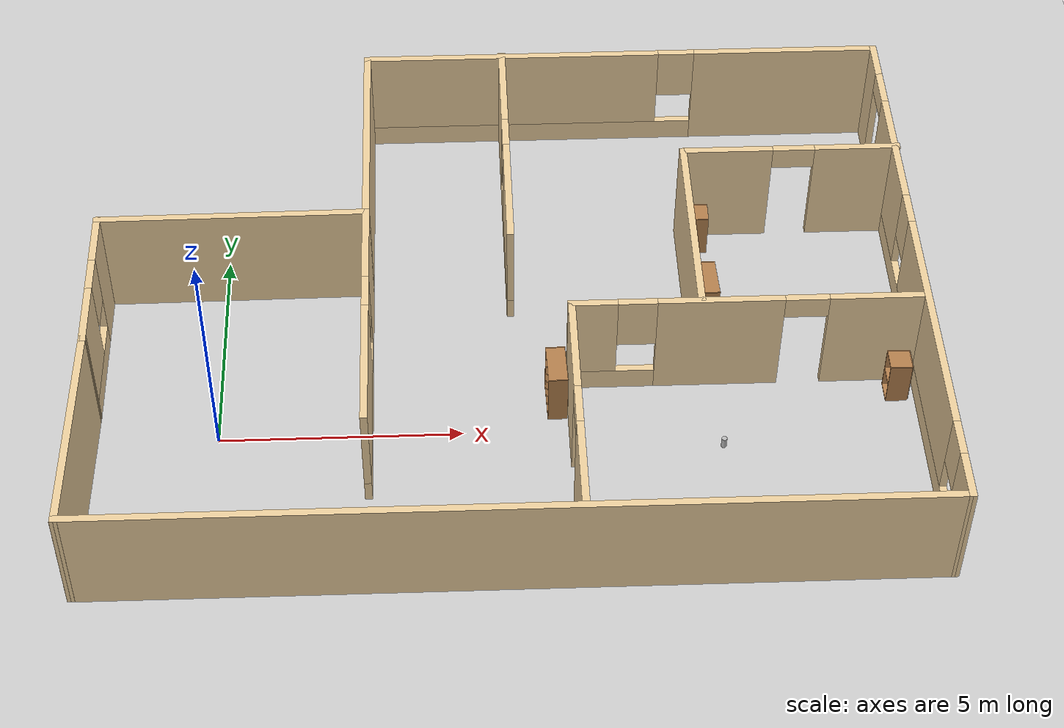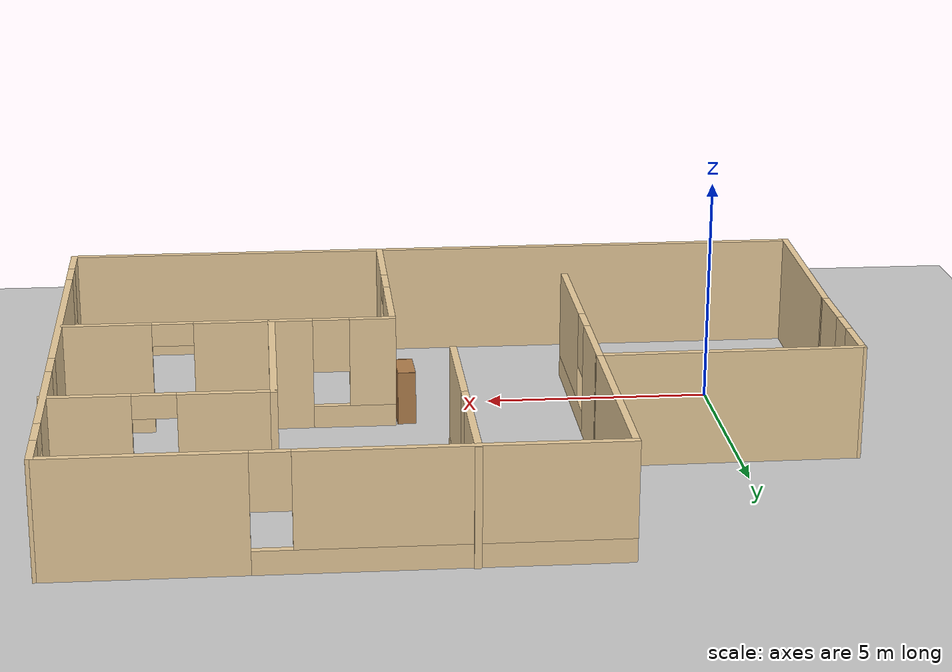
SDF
<sdf version="1.7">
 <world name="default">
  <light name="sun" type="directional">
   <pose>0 0 10 0 -0 0</pose>
   <diffuse>0.8 0.8 0.8 1</diffuse>
   <specular>0.2 0.2 0.2 1</specular>
   <attenuation>
    <range>1000</range>
    <constant>0.9</constant>
    <linear>0.01</linear>
    <quadratic>0.001</quadratic>
   </attenuation>
   <direction>-0.5 0.1 -0.9</direction>
   <spot><inner_angle>0</inner_angle><outer_angle>0</outer_angle><falloff>0</falloff></spot>
  </light>
  <model name="ground_plane">
   <static>1</static>
   <link name="link">
    <collision name="collision">
     <geometry><plane><normal>0 0 1</normal><size>100 100</size></plane></geometry>
     <surface><friction><ode><mu>100</mu><mu2>50</mu2></ode></friction></surface>
    </collision>
    <visual name="visual">
     <cast_shadows>0</cast_shadows>
     <geometry><plane><normal>0 0 1</normal><size>100 100</size></plane></geometry>
     <material>
      <script><uri>file://media/materials/scripts/gazebo.material</uri><name>Gazebo/Grey</name></script>
     </material>
    </visual>
   </link>
  </model>
  <gravity>0 0 -9.8</gravity>
  <magnetic_field>6e-06 2.3e-05 -4.2e-05</magnetic_field>
  <atmosphere type="adiabatic"/>
  <physics type="ode">
   <max_step_size>0.001</max_step_size>
   <real_time_factor>1</real_time_factor>
   <real_time_update_rate>1000</real_time_update_rate>
  </physics>
  <scene><ambient>0.4 0.4 0.4 1</ambient><background>0.7 0.7 0.7 1</background><shadows>1</shadows></scene>
  <audio><device>default</device></audio>
  <spherical_coordinates>
   <surface_model>EARTH_WGS84</surface_model>
   <latitude_deg>0</latitude_deg>
   <longitude_deg>0</longitude_deg>
   <elevation>0</elevation>
   <heading_deg>0</heading_deg>
  </spherical_coordinates>
  <model name="new_home">
   <pose>5.92046 2.52349 0 0 -0 0</pose>
   <link name="Wall_13">
    <pose>8.52827 -0.018531 0 0 -0 1.57397</pose>
    <visual name="Wall_13_Visual_0">
     <pose>-5.93688 0 1.25 0 -0 0</pose>
     <geometry><box><size>1.0454 0.15 2.5</size></box></geometry>
     <material>
      <script><uri>file://media/materials/scripts/gazebo.material</uri><name>Gazebo/Grey</name></script>
      <ambient>0.921569 0.807843 0.615686 1</ambient>
     </material>
     <meta><layer>0</layer></meta>
    </visual>
    <collision name="Wall_13_Collision_0">
     <geometry><box><size>1.0454 0.15 2.5</size></box></geometry>
     <pose>-5.93688 0 1.25 0 -0 0</pose>
    </collision>
    <visual name="Wall_13_Visual_1">
     <pose>5.97291 0 1.25 0 -0 0</pose>
     <geometry><box><size>0.973326 0.15 2.5</size></box></geometry>
     <material>
      <script><uri>file://media/materials/scripts/gazebo.material</uri><name>Gazebo/Grey</name></script>
      <ambient>0.921569 0.807843 0.615686 1</ambient>
     </material>
     <meta><layer>0</layer></meta>
    </visual>
    <collision name="Wall_13_Collision_1">
     <geometry><box><size>0.973326 0.15 2.5</size></box></geometry>
     <pose>5.97291 0 1.25 0 -0 0</pose>
    </collision>
    <visual name="Wall_13_Visual_2">
     <pose>-0.413965 0 0.25 0 -0 0</pose>
     <geometry><box><size>10.0004 0.15 0.5</size></box></geometry>
     <material>
      <script><uri>file://media/materials/scripts/gazebo.material</uri><name>Gazebo/Grey</name></script>
      <ambient>0.921569 0.807843 0.615686 1</ambient>
     </material>
     <meta><layer>0</layer></meta>
    </visual>
    <collision name="Wall_13_Collision_2">
     <geometry><box><size>10.0004 0.15 0.5</size></box></geometry>
     <pose>-0.413965 0 0.25 0 -0 0</pose>
    </collision>
    <visual name="Wall_13_Visual_3">
     <pose>-1.88842 0 1.5 0 -0 0</pose>
     <geometry><box><size>5.45152 0.15 2</size></box></geometry>
     <material>
      <script><uri>file://media/materials/scripts/gazebo.material</uri><name>Gazebo/Grey</name></script>
      <ambient>0.921569 0.807843 0.615686 1</ambient>
     </material>
     <meta><layer>0</layer></meta>
    </visual>
    <collision name="Wall_13_Collision_3">
     <geometry><box><size>5.45152 0.15 2</size></box></geometry>
     <pose>-1.88842 0 1.5 0 -0 0</pose>
    </collision>
    <visual name="Wall_13_Visual_4">
     <pose>3.1118 0 1.5 0 -0 0</pose>
     <geometry><box><size>2.94891 0.15 2</size></box></geometry>
     <material>
      <script><uri>file://media/materials/scripts/gazebo.material</uri><name>Gazebo/Grey</name></script>
      <ambient>0.921569 0.807843 0.615686 1</ambient>
     </material>
     <meta><layer>0</layer></meta>
    </visual>
    <collision name="Wall_13_Collision_4">
     <geometry><box><size>2.94891 0.15 2</size></box></geometry>
     <pose>3.1118 0 1.5 0 -0 0</pose>
    </collision>
    <visual name="Wall_13_Visual_5">
     <pose>-5.01418 0 1.9 0 -0 0</pose>
     <geometry><box><size>0.8 0.15 1.2</size></box></geometry>
     <material>
      <script><uri>file://media/materials/scripts/gazebo.material</uri><name>Gazebo/Grey</name></script>
      <ambient>0.921569 0.807843 0.615686 1</ambient>
     </material>
     <meta><layer>0</layer></meta>
    </visual>
    <collision name="Wall_13_Collision_5">
     <geometry><box><size>0.8 0.15 1.2</size></box></geometry>
     <pose>-5.01418 0 1.9 0 -0 0</pose>
    </collision>
    <visual name="Wall_13_Visual_6">
     <pose>1.23734 0 1.9 0 -0 0</pose>
     <geometry><box><size>0.8 0.15 1.2</size></box></geometry>
     <material>
      <script><uri>file://media/materials/scripts/gazebo.material</uri><name>Gazebo/Grey</name></script>
      <ambient>0.921569 0.807843 0.615686 1</ambient>
     </material>
     <meta><layer>0</layer></meta>
    </visual>
    <collision name="Wall_13_Collision_6">
     <geometry><box><size>0.8 0.15 1.2</size></box></geometry>
     <pose>1.23734 0 1.9 0 -0 0</pose>
    </collision>
    <visual name="Wall_13_Visual_7">
     <pose>5.03625 0 2.25 0 -0 0</pose>
     <geometry><box><size>0.9 0.15 0.5</size></box></geometry>
     <material>
      <script><uri>file://media/materials/scripts/gazebo.material</uri><name>Gazebo/Grey</name></script>
      <ambient>0.921569 0.807843 0.615686 1</ambient>
     </material>
     <meta><layer>0</layer></meta>
    </visual>
    <collision name="Wall_13_Collision_7">
     <geometry><box><size>0.9 0.15 0.5</size></box></geometry>
     <pose>5.03625 0 2.25 0 -0 0</pose>
    </collision>
   </link>
   <link name="Wall_15">
    <pose>2.83304 6.36601 0 0 -0 3.14159</pose>
    <visual name="Wall_15_Visual_0">
     <pose>-3.69333 0 1.25 0 -0 0</pose>
     <geometry><box><size>4.11333 0.15 2.5</size></box></geometry>
     <material>
      <script><uri>file://media/materials/scripts/gazebo.material</uri><name>Gazebo/Grey</name></script>
      <ambient>0.921569 0.807843 0.615686 1</ambient>
     </material>
     <meta><layer>0</layer></meta>
    </visual>
    <collision name="Wall_15_Collision_0">
     <geometry><box><size>4.11333 0.15 2.5</size></box></geometry>
     <pose>-3.69333 0 1.25 0 -0 0</pose>
    </collision>
    <visual name="Wall_15_Visual_1">
     <pose>2.05667 0 0.25 0 -0 0</pose>
     <geometry><box><size>7.38667 0.15 0.5</size></box></geometry>
     <material>
      <script><uri>file://media/materials/scripts/gazebo.material</uri><name>Gazebo/Grey</name></script>
      <ambient>0.921569 0.807843 0.615686 1</ambient>
     </material>
     <meta><layer>0</layer></meta>
    </visual>
    <collision name="Wall_15_Collision_1">
     <geometry><box><size>7.38667 0.15 0.5</size></box></geometry>
     <pose>2.05667 0 0.25 0 -0 0</pose>
    </collision>
    <visual name="Wall_15_Visual_2">
     <pose>2.45667 0 1.5 0 -0 0</pose>
     <geometry><box><size>6.58667 0.15 2</size></box></geometry>
     <material>
      <script><uri>file://media/materials/scripts/gazebo.material</uri><name>Gazebo/Grey</name></script>
      <ambient>0.921569 0.807843 0.615686 1</ambient>
     </material>
     <meta><layer>0</layer></meta>
    </visual>
    <collision name="Wall_15_Collision_2">
     <geometry><box><size>6.58667 0.15 2</size></box></geometry>
     <pose>2.45667 0 1.5 0 -0 0</pose>
    </collision>
    <visual name="Wall_15_Visual_3">
     <pose>-1.23667 0 1.9 0 -0 0</pose>
     <geometry><box><size>0.8 0.15 1.2</size></box></geometry>
     <material>
      <script><uri>file://media/materials/scripts/gazebo.material</uri><name>Gazebo/Grey</name></script>
      <ambient>0.921569 0.807843 0.615686 1</ambient>
     </material>
     <meta><layer>0</layer></meta>
    </visual>
    <collision name="Wall_15_Collision_3">
     <geometry><box><size>0.8 0.15 1.2</size></box></geometry>
     <pose>-1.23667 0 1.9 0 -0 0</pose>
    </collision>
   </link>
   <link name="Wall_16">
    <collision name="Wall_16_Collision">
     <geometry><box><size>5 0.15 2.5</size></box></geometry>
     <pose>0 0 1.25 0 -0 0</pose>
    </collision>
    <visual name="Wall_16_Visual">
     <pose>0 0 1.25 0 -0 0</pose>
     <geometry><box><size>5 0.15 2.5</size></box></geometry>
     <material>
      <script><uri>file://media/materials/scripts/gazebo.material</uri><name>Gazebo/Grey</name></script>
      <ambient>0.921569 0.807843 0.615686 1</ambient>
     </material>
     <meta><layer>0</layer></meta>
    </visual>
    <pose>-2.84196 3.94101 0 0 -0 -1.5708</pose>
   </link>
   <link name="Wall_17">
    <collision name="Wall_17_Collision">
     <geometry><box><size>5.75022 0.15 2.5</size></box></geometry>
     <pose>0 0 1.25 0 -0 0</pose>
    </collision>
    <visual name="Wall_17_Visual">
     <pose>0 0 1.25 0 -0 0</pose>
     <geometry><box><size>5.75022 0.15 2.5</size></box></geometry>
     <material>
      <script><uri>file://media/materials/scripts/gazebo.material</uri><name>Gazebo/Grey</name></script>
      <ambient>0.921569 0.807843 0.615686 1</ambient>
     </material>
     <meta><layer>0</layer></meta>
    </visual>
    <pose>-5.64196 1.49101 0 0 -0 -3.13266</pose>
   </link>
   <link name="Wall_19">
    <pose>-2.84196 -1.28399 0 0 -0 -1.5708</pose>
    <visual name="Wall_19_Visual_0">
     <pose>-1.8912 0 1.25 0 -0 0</pose>
     <geometry><box><size>1.9676 0.15 2.5</size></box></geometry>
     <material>
      <script><uri>file://media/materials/scripts/gazebo.material</uri><name>Gazebo/Grey</name></script>
      <ambient>0.921569 0.807843 0.615686 1</ambient>
     </material>
     <meta><layer>0</layer></meta>
    </visual>
    <collision name="Wall_19_Collision_0">
     <geometry><box><size>1.9676 0.15 2.5</size></box></geometry>
     <pose>-1.8912 0 1.25 0 -0 0</pose>
    </collision>
    <visual name="Wall_19_Visual_1">
     <pose>0.983801 0 0.25 0 -0 0</pose>
     <geometry><box><size>3.7824 0.15 0.5</size></box></geometry>
     <material>
      <script><uri>file://media/materials/scripts/gazebo.material</uri><name>Gazebo/Grey</name></script>
      <ambient>0.921569 0.807843 0.615686 1</ambient>
     </material>
     <meta><layer>0</layer></meta>
    </visual>
    <collision name="Wall_19_Collision_1">
     <geometry><box><size>3.7824 0.15 0.5</size></box></geometry>
     <pose>0.983801 0 0.25 0 -0 0</pose>
    </collision>
    <visual name="Wall_19_Visual_2">
     <pose>1.3838 0 1.5 0 -0 0</pose>
     <geometry><box><size>2.9824 0.15 2</size></box></geometry>
     <material>
      <script><uri>file://media/materials/scripts/gazebo.material</uri><name>Gazebo/Grey</name></script>
      <ambient>0.921569 0.807843 0.615686 1</ambient>
     </material>
     <meta><layer>0</layer></meta>
    </visual>
    <collision name="Wall_19_Collision_2">
     <geometry><box><size>2.9824 0.15 2</size></box></geometry>
     <pose>1.3838 0 1.5 0 -0 0</pose>
    </collision>
    <visual name="Wall_19_Visual_3">
     <pose>-0.507399 0 1.9 0 -0 0</pose>
     <geometry><box><size>0.8 0.15 1.2</size></box></geometry>
     <material>
      <script><uri>file://media/materials/scripts/gazebo.material</uri><name>Gazebo/Grey</name></script>
      <ambient>0.921569 0.807843 0.615686 1</ambient>
     </material>
     <meta><layer>0</layer></meta>
    </visual>
    <collision name="Wall_19_Collision_3">
     <geometry><box><size>0.8 0.15 1.2</size></box></geometry>
     <pose>-0.507399 0 1.9 0 -0 0</pose>
    </collision>
   </link>
   <link name="Wall_21">
    <pose>4.86947 -1.27328 0 0 -0 3.14159</pose>
    <visual name="Wall_21_Visual_0">
     <pose>-2.64843 0 1.25 0 -0 0</pose>
     <geometry><box><size>1.95315 0.15 2.5</size></box></geometry>
     <material>
      <script><uri>file://media/materials/scripts/gazebo.material</uri><name>Gazebo/Grey</name></script>
      <ambient>0.921569 0.807843 0.615686 1</ambient>
     </material>
     <meta><layer>0</layer></meta>
    </visual>
    <collision name="Wall_21_Collision_0">
     <geometry><box><size>1.95315 0.15 2.5</size></box></geometry>
     <pose>-2.64843 0 1.25 0 -0 0</pose>
    </collision>
    <visual name="Wall_21_Visual_1">
     <pose>0.518863 0 1.25 0 -0 0</pose>
     <geometry><box><size>2.58143 0.15 2.5</size></box></geometry>
     <material>
      <script><uri>file://media/materials/scripts/gazebo.material</uri><name>Gazebo/Grey</name></script>
      <ambient>0.921569 0.807843 0.615686 1</ambient>
     </material>
     <meta><layer>0</layer></meta>
    </visual>
    <collision name="Wall_21_Collision_1">
     <geometry><box><size>2.58143 0.15 2.5</size></box></geometry>
     <pose>0.518863 0 1.25 0 -0 0</pose>
    </collision>
    <visual name="Wall_21_Visual_2">
     <pose>2.71729 0 0.25 0 -0 0</pose>
     <geometry><box><size>1.81542 0.15 0.5</size></box></geometry>
     <material>
      <script><uri>file://media/materials/scripts/gazebo.material</uri><name>Gazebo/Grey</name></script>
      <ambient>0.921569 0.807843 0.615686 1</ambient>
     </material>
     <meta><layer>0</layer></meta>
    </visual>
    <collision name="Wall_21_Collision_2">
     <geometry><box><size>1.81542 0.15 0.5</size></box></geometry>
     <pose>2.71729 0 0.25 0 -0 0</pose>
    </collision>
    <visual name="Wall_21_Visual_3">
     <pose>3.11729 0 1.5 0 -0 0</pose>
     <geometry><box><size>1.01542 0.15 2</size></box></geometry>
     <material>
      <script><uri>file://media/materials/scripts/gazebo.material</uri><name>Gazebo/Grey</name></script>
      <ambient>0.921569 0.807843 0.615686 1</ambient>
     </material>
     <meta><layer>0</layer></meta>
    </visual>
    <collision name="Wall_21_Collision_3">
     <geometry><box><size>1.01542 0.15 2</size></box></geometry>
     <pose>3.11729 0 1.5 0 -0 0</pose>
    </collision>
    <visual name="Wall_21_Visual_4">
     <pose>2.20958 0 1.9 0 -0 0</pose>
     <geometry><box><size>0.8 0.15 1.2</size></box></geometry>
     <material>
      <script><uri>file://media/materials/scripts/gazebo.material</uri><name>Gazebo/Grey</name></script>
      <ambient>0.921569 0.807843 0.615686 1</ambient>
     </material>
     <meta><layer>0</layer></meta>
    </visual>
    <collision name="Wall_21_Collision_4">
     <geometry><box><size>0.8 0.15 1.2</size></box></geometry>
     <pose>2.20958 0 1.9 0 -0 0</pose>
    </collision>
    <visual name="Wall_21_Visual_5">
     <pose>-1.22185 0 2.25 0 -0 0</pose>
     <geometry><box><size>0.9 0.15 0.5</size></box></geometry>
     <material>
      <script><uri>file://media/materials/scripts/gazebo.material</uri><name>Gazebo/Grey</name></script>
      <ambient>0.921569 0.807843 0.615686 1</ambient>
     </material>
     <meta><layer>0</layer></meta>
    </visual>
    <collision name="Wall_21_Collision_5">
     <geometry><box><size>0.9 0.15 0.5</size></box></geometry>
     <pose>-1.22185 0 2.25 0 -0 0</pose>
    </collision>
   </link>
   <link name="Wall_22">
    <pose>1.31947 -3.82328 0 0 -0 -1.5708</pose>
    <visual name="Wall_22_Visual_0">
     <pose>-1.48791 0 1.25 0 -0 0</pose>
     <geometry><box><size>2.27418 0.15 2.5</size></box></geometry>
     <material>
      <script><uri>file://media/materials/scripts/gazebo.material</uri><name>Gazebo/Grey</name></script>
      <ambient>0.921569 0.807843 0.615686 1</ambient>
     </material>
     <meta><layer>0</layer></meta>
    </visual>
    <collision name="Wall_22_Collision_0">
     <geometry><box><size>2.27418 0.15 2.5</size></box></geometry>
     <pose>-1.48791 0 1.25 0 -0 0</pose>
    </collision>
    <visual name="Wall_22_Visual_1">
     <pose>1.58709 0 1.25 0 -0 0</pose>
     <geometry><box><size>2.07582 0.15 2.5</size></box></geometry>
     <material>
      <script><uri>file://media/materials/scripts/gazebo.material</uri><name>Gazebo/Grey</name></script>
      <ambient>0.921569 0.807843 0.615686 1</ambient>
     </material>
     <meta><layer>0</layer></meta>
    </visual>
    <collision name="Wall_22_Collision_1">
     <geometry><box><size>2.07582 0.15 2.5</size></box></geometry>
     <pose>1.58709 0 1.25 0 -0 0</pose>
    </collision>
    <visual name="Wall_22_Visual_2">
     <pose>0.099177 0 2.25 0 -0 0</pose>
     <geometry><box><size>0.9 0.15 0.5</size></box></geometry>
     <material>
      <script><uri>file://media/materials/scripts/gazebo.material</uri><name>Gazebo/Grey</name></script>
      <ambient>0.921569 0.807843 0.615686 1</ambient>
     </material>
     <meta><layer>0</layer></meta>
    </visual>
    <collision name="Wall_22_Collision_2">
     <geometry><box><size>0.9 0.15 0.5</size></box></geometry>
     <pose>0.099177 0 2.25 0 -0 0</pose>
    </collision>
   </link>
   <link name="Wall_24">
    <pose>0.16011 3.60487 0 0 -0 -1.5708</pose>
    <visual name="Wall_24_Visual_0">
     <pose>-1.77429 0 1.25 0 -0 0</pose>
     <geometry><box><size>2.20142 0.15 2.5</size></box></geometry>
     <material>
      <script><uri>file://media/materials/scripts/gazebo.material</uri><name>Gazebo/Grey</name></script>
      <ambient>0.921569 0.807843 0.615686 1</ambient>
     </material>
     <meta><layer>0</layer></meta>
    </visual>
    <collision name="Wall_24_Collision_0">
     <geometry><box><size>2.20142 0.15 2.5</size></box></geometry>
     <pose>-1.77429 0 1.25 0 -0 0</pose>
    </collision>
    <visual name="Wall_24_Visual_1">
     <pose>1.10071 0 0.25 0 -0 0</pose>
     <geometry><box><size>3.54858 0.15 0.5</size></box></geometry>
     <material>
      <script><uri>file://media/materials/scripts/gazebo.material</uri><name>Gazebo/Grey</name></script>
      <ambient>0.921569 0.807843 0.615686 1</ambient>
     </material>
     <meta><layer>0</layer></meta>
    </visual>
    <collision name="Wall_24_Collision_1">
     <geometry><box><size>3.54858 0.15 0.5</size></box></geometry>
     <pose>1.10071 0 0.25 0 -0 0</pose>
    </collision>
    <visual name="Wall_24_Visual_2">
     <pose>1.50071 0 1.5 0 -0 0</pose>
     <geometry><box><size>2.74858 0.15 2</size></box></geometry>
     <material>
      <script><uri>file://media/materials/scripts/gazebo.material</uri><name>Gazebo/Grey</name></script>
      <ambient>0.921569 0.807843 0.615686 1</ambient>
     </material>
     <meta><layer>0</layer></meta>
    </visual>
    <collision name="Wall_24_Collision_2">
     <geometry><box><size>2.74858 0.15 2</size></box></geometry>
     <pose>1.50071 0 1.5 0 -0 0</pose>
    </collision>
    <visual name="Wall_24_Visual_3">
     <pose>-0.273577 0 1.9 0 -0 0</pose>
     <geometry><box><size>0.8 0.15 1.2</size></box></geometry>
     <material>
      <script><uri>file://media/materials/scripts/gazebo.material</uri><name>Gazebo/Grey</name></script>
      <ambient>0.921569 0.807843 0.615686 1</ambient>
     </material>
     <meta><layer>0</layer></meta>
    </visual>
    <collision name="Wall_24_Collision_3">
     <geometry><box><size>0.8 0.15 1.2</size></box></geometry>
     <pose>-0.273577 0 1.9 0 -0 0</pose>
    </collision>
   </link>
   <link name="Wall_26">
    <collision name="Wall_26_Collision">
     <geometry><box><size>4.5 0.15 2.5</size></box></geometry>
     <pose>0 0 1.25 0 -0 0</pose>
    </collision>
    <visual name="Wall_26_Visual">
     <pose>0 0 1.25 0 -0 0</pose>
     <geometry><box><size>4.5 0.15 2.5</size></box></geometry>
     <material>
      <script><uri>file://media/materials/scripts/gazebo.material</uri><name>Gazebo/Grey</name></script>
      <ambient>0.921569 0.807843 0.615686 1</ambient>
     </material>
     <meta><layer>0</layer></meta>
    </visual>
    <pose>3.9533 0.962904 0 0 -0 1.5708</pose>
   </link>
   <link name="Wall_27">
    <pose>6.2533 3.1379 0 0 -0 0</pose>
    <visual name="Wall_27_Visual_0">
     <pose>-1.37379 0 1.25 0 -0 0</pose>
     <geometry><box><size>2.00243 0.15 2.5</size></box></geometry>
     <material>
      <script><uri>file://media/materials/scripts/gazebo.material</uri><name>Gazebo/Grey</name></script>
      <ambient>0.921569 0.807843 0.615686 1</ambient>
     </material>
     <meta><layer>0</layer></meta>
    </visual>
    <collision name="Wall_27_Collision_0">
     <geometry><box><size>2.00243 0.15 2.5</size></box></geometry>
     <pose>-1.37379 0 1.25 0 -0 0</pose>
    </collision>
    <visual name="Wall_27_Visual_1">
     <pose>1.45121 0 1.25 0 -0 0</pose>
     <geometry><box><size>1.84757 0.15 2.5</size></box></geometry>
     <material>
      <script><uri>file://media/materials/scripts/gazebo.material</uri><name>Gazebo/Grey</name></script>
      <ambient>0.921569 0.807843 0.615686 1</ambient>
     </material>
     <meta><layer>0</layer></meta>
    </visual>
    <collision name="Wall_27_Collision_1">
     <geometry><box><size>1.84757 0.15 2.5</size></box></geometry>
     <pose>1.45121 0 1.25 0 -0 0</pose>
    </collision>
    <visual name="Wall_27_Visual_2">
     <pose>0.077426 0 2.25 0 -0 0</pose>
     <geometry><box><size>0.9 0.15 0.5</size></box></geometry>
     <material>
      <script><uri>file://media/materials/scripts/gazebo.material</uri><name>Gazebo/Grey</name></script>
      <ambient>0.921569 0.807843 0.615686 1</ambient>
     </material>
     <meta><layer>0</layer></meta>
    </visual>
    <collision name="Wall_27_Collision_2">
     <geometry><box><size>0.9 0.15 0.5</size></box></geometry>
     <pose>0.077426 0 2.25 0 -0 0</pose>
    </collision>
   </link>
   <link name="Wall_29">
    <collision name="Wall_29_Collision">
     <geometry><box><size>17.25 0.15 2.5</size></box></geometry>
     <pose>0 0 1.25 0 -0 0</pose>
    </collision>
    <visual name="Wall_29_Visual">
     <pose>0 0 1.25 0 -0 0</pose>
     <geometry><box><size>17.25 0.15 2.5</size></box></geometry>
     <material>
      <script><uri>file://media/materials/scripts/gazebo.material</uri><name>Gazebo/Grey</name></script>
      <ambient>0.921569 0.807843 0.615686 1</ambient>
     </material>
     <meta><layer>0</layer></meta>
    </visual>
    <pose>-0.001503 -6.40308 0 0 -0 3.14159</pose>
   </link>
   <link name="Wall_30">
    <collision name="Wall_30_Collision">
     <geometry><box><size>4.67042 0.15 2.5</size></box></geometry>
     <pose>0 0 1.25 0 -0 0</pose>
    </collision>
    <visual name="Wall_30_Visual">
     <pose>0 0 1.25 0 -0 0</pose>
     <geometry><box><size>4.67042 0.15 2.5</size></box></geometry>
     <material>
      <script><uri>file://media/materials/scripts/gazebo.material</uri><name>Gazebo/Grey</name></script>
      <ambient>0.921569 0.807843 0.615686 1</ambient>
     </material>
     <meta><layer>0</layer></meta>
    </visual>
    <pose>-8.49673 -4.14353 0 0 -0 1.54656</pose>
   </link>
   <link name="Wall_8">
    <pose>-8.44196 -0.208986 0 0 -0 -1.5708</pose>
    <visual name="Wall_8_Visual_0">
     <pose>-1.1237 0 1.25 0 -0 0</pose>
     <geometry><box><size>1.2526 0.15 2.5</size></box></geometry>
     <material>
      <script><uri>file://media/materials/scripts/gazebo.material</uri><name>Gazebo/Grey</name></script>
      <ambient>0.921569 0.807843 0.615686 1</ambient>
     </material>
     <meta><layer>0</layer></meta>
    </visual>
    <collision name="Wall_8_Collision_0">
     <geometry><box><size>1.2526 0.15 2.5</size></box></geometry>
     <pose>-1.1237 0 1.25 0 -0 0</pose>
    </collision>
    <visual name="Wall_8_Visual_1">
     <pose>0.626298 0 0.25 0 -0 0</pose>
     <geometry><box><size>2.2474 0.15 0.5</size></box></geometry>
     <material>
      <script><uri>file://media/materials/scripts/gazebo.material</uri><name>Gazebo/Grey</name></script>
      <ambient>0.921569 0.807843 0.615686 1</ambient>
     </material>
     <meta><layer>0</layer></meta>
    </visual>
    <collision name="Wall_8_Collision_1">
     <geometry><box><size>2.2474 0.15 0.5</size></box></geometry>
     <pose>0.626298 0 0.25 0 -0 0</pose>
    </collision>
    <visual name="Wall_8_Visual_2">
     <pose>1.0263 0 1.5 0 -0 0</pose>
     <geometry><box><size>1.4474 0.15 2</size></box></geometry>
     <material>
      <script><uri>file://media/materials/scripts/gazebo.material</uri><name>Gazebo/Grey</name></script>
      <ambient>0.921569 0.807843 0.615686 1</ambient>
     </material>
     <meta><layer>0</layer></meta>
    </visual>
    <collision name="Wall_8_Collision_2">
     <geometry><box><size>1.4474 0.15 2</size></box></geometry>
     <pose>1.0263 0 1.5 0 -0 0</pose>
    </collision>
    <visual name="Wall_8_Visual_3">
     <pose>-0.097404 0 1.9 0 -0 0</pose>
     <geometry><box><size>0.8 0.15 1.2</size></box></geometry>
     <material>
      <script><uri>file://media/materials/scripts/gazebo.material</uri><name>Gazebo/Grey</name></script>
      <ambient>0.921569 0.807843 0.615686 1</ambient>
     </material>
     <meta><layer>0</layer></meta>
    </visual>
    <collision name="Wall_8_Collision_3">
     <geometry><box><size>0.8 0.15 1.2</size></box></geometry>
     <pose>-0.097404 0 1.9 0 -0 0</pose>
    </collision>
   </link>
   <static>1</static>
  </model>
  <model name="cabinet">
   <static>1</static>
   <link name="cabinet_bottom_plate">
    <inertial>
     <pose>0 0 -1 0 -0 0</pose>
     <inertia><ixx>2.05</ixx><ixy>0</ixy><ixz>0</ixz><iyy>2.05</iyy><iyz>0</iyz><izz>2.05</izz></inertia>
     <mass>25</mass>
    </inertial>
    <collision name="cabinet_bottom_plate_geom">
     <pose>0 0 0.01 0 -0 0</pose>
     <geometry><box><size>0.45 0.45 0.02</size></box></geometry>
    </collision>
    <visual name="cabinet_bottom_plate_geom_visual">
     <pose>0 0 0.01 0 -0 0</pose>
     <geometry><box><size>0.45 0.45 0.02</size></box></geometry>
     <material>
      <script><uri>file://media/materials/scripts/gazebo.material</uri><name>Gazebo/Wood</name></script>
     </material>
    </visual>
    <collision name="cabinet_bottom_plate_geom_cabinet_back_plate">
     <pose>0.235 0 0.51 0 -0 0</pose>
     <geometry><box><size>0.02 0.45 1.02</size></box></geometry>
    </collision>
    <visual name="cabinet_bottom_plate_geom_cabinet_back_plate_visual">
     <pose>0.235 0 0.51 0 -0 0</pose>
     <geometry><box><size>0.02 0.45 1.02</size></box></geometry>
     <material>
      <script><uri>file://media/materials/scripts/gazebo.material</uri><name>Gazebo/Wood</name></script>
     </material>
    </visual>
    <collision name="cabinet_bottom_plate_geom_cabinet_left_plate">
     <pose>0 0.235 0.51 0 -0 0</pose>
     <geometry><box><size>0.45 0.02 1.02</size></box></geometry>
    </collision>
    <visual name="cabinet_bottom_plate_geom_cabinet_left_plate_visual">
     <pose>0 0.235 0.51 0 -0 0</pose>
     <geometry><box><size>0.45 0.02 1.02</size></box></geometry>
     <material>
      <script><uri>file://media/materials/scripts/gazebo.material</uri><name>Gazebo/Wood</name></script>
     </material>
    </visual>
    <collision name="cabinet_bottom_plate_geom_cabinet_middle_plate">
     <pose>0 0 0.51 0 -0 0</pose>
     <geometry><box><size>0.45 0.45 0.02</size></box></geometry>
    </collision>
    <visual name="cabinet_bottom_plate_geom_cabinet_middle_plate_visual">
     <pose>0 0 0.51 0 -0 0</pose>
     <geometry><box><size>0.45 0.45 0.02</size></box></geometry>
     <material>
      <script><uri>file://media/materials/scripts/gazebo.material</uri><name>Gazebo/Wood</name></script>
     </material>
    </visual>
    <collision name="cabinet_bottom_plate_geom_cabinet_right_plate">
     <pose>0 -0.235 0.51 0 -0 0</pose>
     <geometry><box><size>0.45 0.02 1.02</size></box></geometry>
    </collision>
    <visual name="cabinet_bottom_plate_geom_cabinet_right_plate_visual">
     <pose>0 -0.235 0.51 0 -0 0</pose>
     <geometry><box><size>0.45 0.02 1.02</size></box></geometry>
     <material>
      <script><uri>file://media/materials/scripts/gazebo.material</uri><name>Gazebo/Wood</name></script>
     </material>
    </visual>
    <collision name="cabinet_bottom_plate_geom_cabinet_top_plate">
     <pose>0 0 1.01 0 -0 0</pose>
     <geometry><box><size>0.45 0.45 0.02</size></box></geometry>
    </collision>
    <visual name="cabinet_bottom_plate_geom_cabinet_top_plate_visual">
     <pose>0 0 1.01 0 -0 0</pose>
     <geometry><box><size>0.45 0.45 0.02</size></box></geometry>
     <material>
      <script><uri>file://media/materials/scripts/gazebo.material</uri><name>Gazebo/Wood</name></script>
     </material>
    </visual>
   </link>
   <pose>13.9989 0.828676 0 0 -0 0</pose>
  </model>
  <model name="cabinet_0">
   <static>1</static>
   <link name="cabinet_bottom_plate">
    <inertial>
     <pose>0 0 -1 0 -0 0</pose>
     <inertia><ixx>2.05</ixx><ixy>0</ixy><ixz>0</ixz><iyy>2.05</iyy><iyz>0</iyz><izz>2.05</izz></inertia>
     <mass>25</mass>
    </inertial>
    <collision name="cabinet_bottom_plate_geom">
     <pose>0 0 0.01 0 -0 0</pose>
     <geometry><box><size>0.45 0.45 0.02</size></box></geometry>
    </collision>
    <visual name="cabinet_bottom_plate_geom_visual">
     <pose>0 0 0.01 0 -0 0</pose>
     <geometry><box><size>0.45 0.45 0.02</size></box></geometry>
     <material>
      <script><uri>file://media/materials/scripts/gazebo.material</uri><name>Gazebo/Wood</name></script>
     </material>
    </visual>
    <collision name="cabinet_bottom_plate_geom_cabinet_back_plate">
     <pose>0.235 0 0.51 0 -0 0</pose>
     <geometry><box><size>0.02 0.45 1.02</size></box></geometry>
    </collision>
    <visual name="cabinet_bottom_plate_geom_cabinet_back_plate_visual">
     <pose>0.235 0 0.51 0 -0 0</pose>
     <geometry><box><size>0.02 0.45 1.02</size></box></geometry>
     <material>
      <script><uri>file://media/materials/scripts/gazebo.material</uri><name>Gazebo/Wood</name></script>
     </material>
    </visual>
    <collision name="cabinet_bottom_plate_geom_cabinet_left_plate">
     <pose>0 0.235 0.51 0 -0 0</pose>
     <geometry><box><size>0.45 0.02 1.02</size></box></geometry>
    </collision>
    <visual name="cabinet_bottom_plate_geom_cabinet_left_plate_visual">
     <pose>0 0.235 0.51 0 -0 0</pose>
     <geometry><box><size>0.45 0.02 1.02</size></box></geometry>
     <material>
      <script><uri>file://media/materials/scripts/gazebo.material</uri><name>Gazebo/Wood</name></script>
     </material>
    </visual>
    <collision name="cabinet_bottom_plate_geom_cabinet_middle_plate">
     <pose>0 0 0.51 0 -0 0</pose>
     <geometry><box><size>0.45 0.45 0.02</size></box></geometry>
    </collision>
    <visual name="cabinet_bottom_plate_geom_cabinet_middle_plate_visual">
     <pose>0 0 0.51 0 -0 0</pose>
     <geometry><box><size>0.45 0.45 0.02</size></box></geometry>
     <material>
      <script><uri>file://media/materials/scripts/gazebo.material</uri><name>Gazebo/Wood</name></script>
     </material>
    </visual>
    <collision name="cabinet_bottom_plate_geom_cabinet_right_plate">
     <pose>0 -0.235 0.51 0 -0 0</pose>
     <geometry><box><size>0.45 0.02 1.02</size></box></geometry>
    </collision>
    <visual name="cabinet_bottom_plate_geom_cabinet_right_plate_visual">
     <pose>0 -0.235 0.51 0 -0 0</pose>
     <geometry><box><size>0.45 0.02 1.02</size></box></geometry>
     <material>
      <script><uri>file://media/materials/scripts/gazebo.material</uri><name>Gazebo/Wood</name></script>
     </material>
    </visual>
    <collision name="cabinet_bottom_plate_geom_cabinet_top_plate">
     <pose>0 0 1.01 0 -0 0</pose>
     <geometry><box><size>0.45 0.45 0.02</size></box></geometry>
    </collision>
    <visual name="cabinet_bottom_plate_geom_cabinet_top_plate_visual">
     <pose>0 0 1.01 0 -0 0</pose>
     <geometry><box><size>0.45 0.45 0.02</size></box></geometry>
     <material>
      <script><uri>file://media/materials/scripts/gazebo.material</uri><name>Gazebo/Wood</name></script>
     </material>
    </visual>
   </link>
   <pose>10.2345 5.27244 -0 0 -0 3.12524</pose>
  </model>
  <model name="bookshelf">
   <static>1</static>
   <link name="link">
    <inertial><mass>1</mass></inertial>
    <collision name="back">
     <pose>0 0.005 0.6 0 -0 0</pose>
     <geometry><box><size>0.9 0.01 1.2</size></box></geometry>
    </collision>
    <visual name="visual1">
     <pose>0 0.005 0.6 0 -0 0</pose>
     <geometry><box><size>0.9 0.01 1.2</size></box></geometry>
     <material>
      <script><uri>file://media/materials/scripts/gazebo.material</uri><name>Gazebo/Wood</name></script>
     </material>
    </visual>
    <collision name="left_side">
     <pose>0.45 -0.195 0.6 0 -0 0</pose>
     <geometry><box><size>0.02 0.4 1.2</size></box></geometry>
    </collision>
    <visual name="visual2">
     <pose>0.45 -0.195 0.6 0 -0 0</pose>
     <geometry><box><size>0.02 0.4 1.2</size></box></geometry>
     <material>
      <script><uri>file://media/materials/scripts/gazebo.material</uri><name>Gazebo/Wood</name></script>
     </material>
    </visual>
    <collision name="right_side">
     <pose>-0.45 -0.195 0.6 0 -0 0</pose>
     <geometry><box><size>0.02 0.4 1.2</size></box></geometry>
    </collision>
    <visual name="visual3">
     <pose>-0.45 -0.195 0.6 0 -0 0</pose>
     <geometry><box><size>0.02 0.4 1.2</size></box></geometry>
     <material>
      <script><uri>file://media/materials/scripts/gazebo.material</uri><name>Gazebo/Wood</name></script>
     </material>
    </visual>
    <collision name="bottom">
     <pose>0 -0.195 0.03 0 -0 0</pose>
     <geometry><box><size>0.88 0.4 0.06</size></box></geometry>
    </collision>
    <visual name="visual4">
     <pose>0 -0.195 0.03 0 -0 0</pose>
     <geometry><box><size>0.88 0.4 0.06</size></box></geometry>
     <material>
      <script><uri>file://media/materials/scripts/gazebo.material</uri><name>Gazebo/Wood</name></script>
     </material>
    </visual>
    <collision name="top">
     <pose>0 -0.195 1.19 0 -0 0</pose>
     <geometry><box><size>0.88 0.4 0.02</size></box></geometry>
    </collision>
    <visual name="visual5">
     <pose>0 -0.195 1.19 0 -0 0</pose>
     <geometry><box><size>0.88 0.4 0.02</size></box></geometry>
     <material>
      <script><uri>file://media/materials/scripts/gazebo.material</uri><name>Gazebo/Wood</name></script>
     </material>
    </visual>
    <collision name="low_shelf">
     <pose>0 -0.195 0.43 0 -0 0</pose>
     <geometry><box><size>0.88 0.4 0.02</size></box></geometry>
    </collision>
    <visual name="visual6">
     <pose>0 -0.195 0.43 0 -0 0</pose>
     <geometry><box><size>0.88 0.4 0.02</size></box></geometry>
     <material>
      <script><uri>file://media/materials/scripts/gazebo.material</uri><name>Gazebo/Wood</name></script>
     </material>
    </visual>
    <collision name="high_shelf">
     <pose>0 -0.195 0.8 0 -0 0</pose>
     <geometry><box><size>0.88 0.4 0.02</size></box></geometry>
    </collision>
    <visual name="visual7">
     <pose>0 -0.195 0.8 0 -0 0</pose>
     <geometry><box><size>0.88 0.4 0.02</size></box></geometry>
     <material>
      <script><uri>file://media/materials/scripts/gazebo.material</uri><name>Gazebo/Wood</name></script>
     </material>
    </visual>
   </link>
   <pose>7.13325 0.79405 0 0 0 -1.54533</pose>
  </model>
  <model name="bookshelf_0">
   <static>1</static>
   <link name="link">
    <inertial><mass>1</mass></inertial>
    <collision name="back">
     <pose>0 0.005 0.6 0 -0 0</pose>
     <geometry><box><size>0.9 0.01 1.2</size></box></geometry>
    </collision>
    <visual name="visual1">
     <pose>0 0.005 0.6 0 -0 0</pose>
     <geometry><box><size>0.9 0.01 1.2</size></box></geometry>
     <material>
      <script><uri>file://media/materials/scripts/gazebo.material</uri><name>Gazebo/Wood</name></script>
     </material>
    </visual>
    <collision name="left_side">
     <pose>0.45 -0.195 0.6 0 -0 0</pose>
     <geometry><box><size>0.02 0.4 1.2</size></box></geometry>
    </collision>
    <visual name="visual2">
     <pose>0.45 -0.195 0.6 0 -0 0</pose>
     <geometry><box><size>0.02 0.4 1.2</size></box></geometry>
     <material>
      <script><uri>file://media/materials/scripts/gazebo.material</uri><name>Gazebo/Wood</name></script>
     </material>
    </visual>
    <collision name="right_side">
     <pose>-0.45 -0.195 0.6 0 -0 0</pose>
     <geometry><box><size>0.02 0.4 1.2</size></box></geometry>
    </collision>
    <visual name="visual3">
     <pose>-0.45 -0.195 0.6 0 -0 0</pose>
     <geometry><box><size>0.02 0.4 1.2</size></box></geometry>
     <material>
      <script><uri>file://media/materials/scripts/gazebo.material</uri><name>Gazebo/Wood</name></script>
     </material>
    </visual>
    <collision name="bottom">
     <pose>0 -0.195 0.03 0 -0 0</pose>
     <geometry><box><size>0.88 0.4 0.06</size></box></geometry>
    </collision>
    <visual name="visual4">
     <pose>0 -0.195 0.03 0 -0 0</pose>
     <geometry><box><size>0.88 0.4 0.06</size></box></geometry>
     <material>
      <script><uri>file://media/materials/scripts/gazebo.material</uri><name>Gazebo/Wood</name></script>
     </material>
    </visual>
    <collision name="top">
     <pose>0 -0.195 1.19 0 -0 0</pose>
     <geometry><box><size>0.88 0.4 0.02</size></box></geometry>
    </collision>
    <visual name="visual5">
     <pose>0 -0.195 1.19 0 -0 0</pose>
     <geometry><box><size>0.88 0.4 0.02</size></box></geometry>
     <material>
      <script><uri>file://media/materials/scripts/gazebo.material</uri><name>Gazebo/Wood</name></script>
     </material>
    </visual>
    <collision name="low_shelf">
     <pose>0 -0.195 0.43 0 -0 0</pose>
     <geometry><box><size>0.88 0.4 0.02</size></box></geometry>
    </collision>
    <visual name="visual6">
     <pose>0 -0.195 0.43 0 -0 0</pose>
     <geometry><box><size>0.88 0.4 0.02</size></box></geometry>
     <material>
      <script><uri>file://media/materials/scripts/gazebo.material</uri><name>Gazebo/Wood</name></script>
     </material>
    </visual>
    <collision name="high_shelf">
     <pose>0 -0.195 0.8 0 -0 0</pose>
     <geometry><box><size>0.88 0.4 0.02</size></box></geometry>
    </collision>
    <visual name="visual7">
     <pose>0 -0.195 0.8 0 -0 0</pose>
     <geometry><box><size>0.88 0.4 0.02</size></box></geometry>
     <material>
      <script><uri>file://media/materials/scripts/gazebo.material</uri><name>Gazebo/Wood</name></script>
     </material>
    </visual>
   </link>
   <pose>10.0436 3.0257 0.092341 0 -0 1.60983</pose>
  </model>
  <model name="beer">
   <link name="link">
    <pose>0 0 0.115 0 -0 0</pose>
    <inertial>
     <mass>0.39</mass>
     <inertia><ixx>0.00058</ixx><ixy>0</ixy><ixz>0</ixz><iyy>0.00058</iyy><iyz>0</iyz><izz>0.00019</izz></inertia>
    </inertial>
    <collision name="collision">
     <geometry><cylinder><radius>0.055</radius><length>0.23</length></cylinder></geometry>
    </collision>
    <visual name="visual">
     <geometry><cylinder><radius>0.055</radius><length>0.23</length></cylinder></geometry>
     <material>
      <script>
       <uri>model://beer/materials/scripts</uri>
       <uri>model://beer/materials/textures</uri>
       <name>Beer/Diffuse</name>
      </script>
     </material>
    </visual>
   </link>
   <pose>10.1598 -1.29659 0.964761 -5e-06 -2e-06 -0.001252</pose>
  </model>
 </world>
</sdf>
